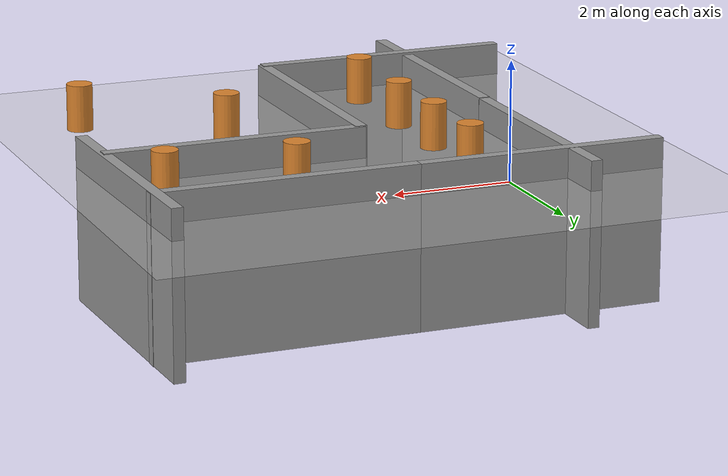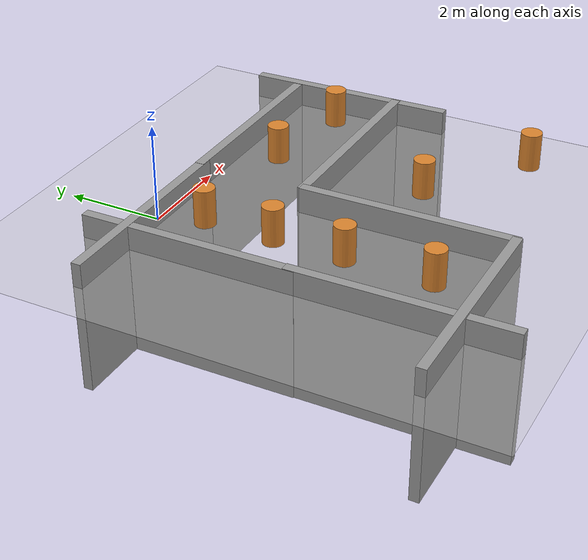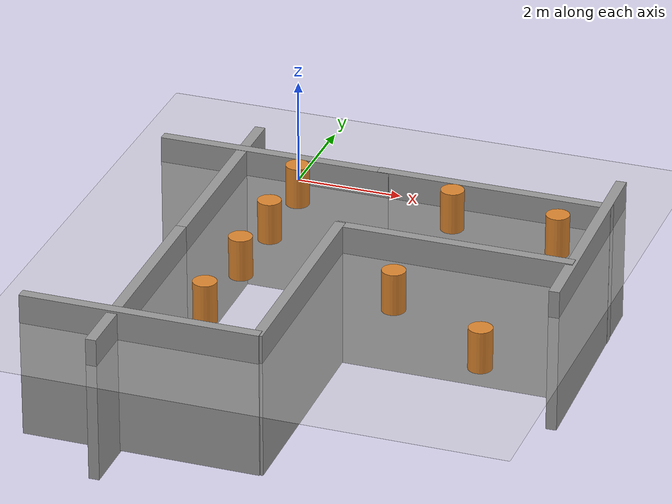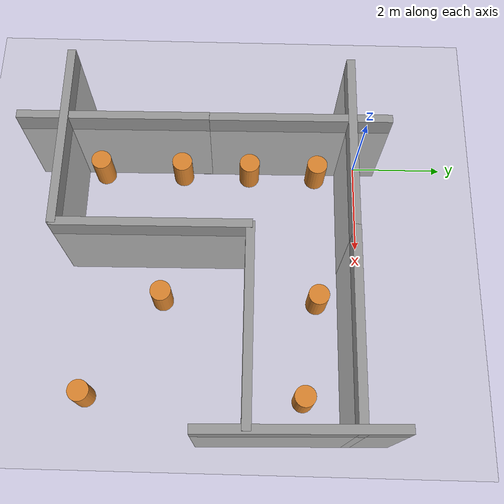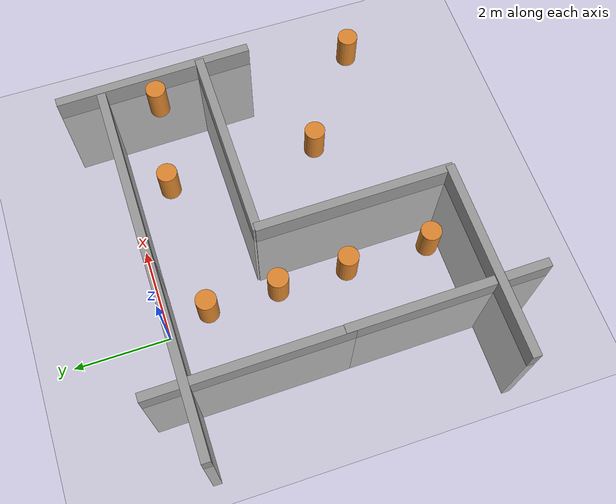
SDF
<sdf version='1.7'>
  <world name='default'>
    <plugin name='set_entity_state_plugin' filename='libset_entity_state.so'>
      <robot_name>my_robot</robot_name>
    </plugin>
    <plugin name='gazebo_ros_state' filename='libgazebo_ros_state.so'>
      <ros>
        <argument>model_states:=model_states_demo</argument>
      </ros>
      <update_rate>1.0</update_rate>
    </plugin>
    <light name='sun' type='directional'>
      <cast_shadows>1</cast_shadows>
      <pose>0 0 18 0 -0.35 0.2</pose>
      <diffuse>0.96 0.94 0.90 1</diffuse>
      <specular>0.16 0.16 0.16 1</specular>
      <attenuation>
        <range>1000</range>
        <constant>0.82</constant>
        <linear>0.006</linear>
        <quadratic>0.0008</quadratic>
      </attenuation>
      <direction>-0.35 0.18 -0.92</direction>
      <spot>
        <inner_angle>0</inner_angle>
        <outer_angle>0</outer_angle>
        <falloff>0</falloff>
      </spot>
    </light>
    <light name='fill_light' type='point'>
      <pose>0 0 9 0 0 0</pose>
      <diffuse>0.42 0.46 0.52 1</diffuse>
      <specular>0.03 0.03 0.03 1</specular>
      <attenuation>
        <range>30</range>
        <constant>0.7</constant>
        <linear>0.02</linear>
        <quadratic>0.001</quadratic>
      </attenuation>
    </light>
    <model name='ground_plane'>
      <static>1</static>
      <link name='link'>
        <collision name='collision'>
          <geometry>
            <plane>
              <normal>0 0 1</normal>
              <size>100 100</size>
            </plane>
          </geometry>
          <surface>
            <friction>
              <ode>
                <mu>100</mu>
                <mu2>50</mu2>
              </ode>
              <torsional>
                <ode/>
              </torsional>
            </friction>
            <contact>
              <ode/>
            </contact>
            <bounce/>
          </surface>
          <max_contacts>10</max_contacts>
        </collision>
        <visual name='visual'>
          <cast_shadows>0</cast_shadows>
          <geometry>
            <plane>
              <normal>0 0 1</normal>
              <size>100 100</size>
            </plane>
          </geometry>
          <material>
            <script>
              <uri>file://media/materials/scripts/gazebo.material</uri>
              <name>Gazebo/Grey</name>
            </script>
          </material>
        </visual>
        <self_collide>0</self_collide>
        <enable_wind>0</enable_wind>
        <kinematic>0</kinematic>
      </link>
    </model>
    <gravity>0 0 -9.8</gravity>
    <magnetic_field>6e-06 2.3e-05 -4.2e-05</magnetic_field>
    <atmosphere type='adiabatic'/>
    <physics type='ode'>
      <max_step_size>0.001</max_step_size>
      <real_time_factor>1</real_time_factor>
      <real_time_update_rate>1000</real_time_update_rate>
    </physics>
    <scene>
      <ambient>0.58 0.60 0.64 1</ambient>
      <background>0.90 0.93 0.98 1</background>
      <shadows>1</shadows>
    </scene>
    <wind/>
    <spherical_coordinates>
      <surface_model>EARTH_WGS84</surface_model>
      <latitude_deg>0</latitude_deg>
      <longitude_deg>0</longitude_deg>
      <elevation>0</elevation>
      <heading_deg>0</heading_deg>
    </spherical_coordinates>
    <model name='grey_wall'>
      <static>1</static>
      <link name='link'>
        <pose>0 0 1.4 0 -0 0</pose>
        <collision name='collision'>
          <geometry>
            <box>
              <size>4.5 0.2 2.8</size>
            </box>
          </geometry>
          <max_contacts>10</max_contacts>
          <surface>
            <contact>
              <ode/>
            </contact>
            <bounce/>
            <friction>
              <torsional>
                <ode/>
              </torsional>
              <ode/>
            </friction>
          </surface>
        </collision>
        <visual name='visual'>
          <cast_shadows>0</cast_shadows>
          <geometry>
            <box>
              <size>4.5 0.2 2.8</size>
            </box>
          </geometry>
          <material>
            <script>
              <uri>model://grey_wall/materials/scripts</uri>
              <uri>model://grey_wall/materials/textures</uri>
              <name>vrc/grey_wall</name>
            </script>
          </material>
        </visual>
        <self_collide>0</self_collide>
        <enable_wind>0</enable_wind>
        <kinematic>0</kinematic>
      </link>
      <pose>-0.52481 -6.74010 -2.25701 0 -0 0</pose>
    </model>
    <model name='grey_wall_0'>
      <static>1</static>
      <link name='link'>
        <pose>0 0 1.4 0 -0 0</pose>
        <collision name='collision'>
          <geometry>
            <box>
              <size>4.5 0.2 2.8</size>
            </box>
          </geometry>
          <max_contacts>10</max_contacts>
          <surface>
            <contact>
              <ode/>
            </contact>
            <bounce/>
            <friction>
              <torsional>
                <ode/>
              </torsional>
              <ode/>
            </friction>
          </surface>
        </collision>
        <visual name='visual'>
          <cast_shadows>0</cast_shadows>
          <geometry>
            <box>
              <size>4.5 0.2 2.8</size>
            </box>
          </geometry>
          <material>
            <script>
              <uri>model://grey_wall/materials/scripts</uri>
              <uri>model://grey_wall/materials/textures</uri>
              <name>vrc/grey_wall</name>
            </script>
          </material>
        </visual>
        <self_collide>0</self_collide>
        <enable_wind>0</enable_wind>
        <kinematic>0</kinematic>
      </link>
      <pose>-0.44853 -0.02143 -2.30785 0 -0 0</pose>
    </model>
    <model name='grey_wall_1'>
      <static>1</static>
      <link name='link'>
        <pose>0 0 1.4 0 -0 0</pose>
        <collision name='collision'>
          <geometry>
            <box>
              <size>4.5 0.2 2.8</size>
            </box>
          </geometry>
          <max_contacts>10</max_contacts>
          <surface>
            <contact>
              <ode/>
            </contact>
            <bounce/>
            <friction>
              <torsional>
                <ode/>
              </torsional>
              <ode/>
            </friction>
          </surface>
        </collision>
        <visual name='visual'>
          <cast_shadows>0</cast_shadows>
          <geometry>
            <box>
              <size>4.5 0.2 2.8</size>
            </box>
          </geometry>
          <material>
            <script>
              <uri>model://grey_wall/materials/scripts</uri>
              <uri>model://grey_wall/materials/textures</uri>
              <name>vrc/grey_wall</name>
            </script>
          </material>
        </visual>
        <self_collide>0</self_collide>
        <enable_wind>0</enable_wind>
        <kinematic>0</kinematic>
      </link>
      <pose>3.81596 -2.35351 -2.27806 0 -0 0</pose>
    </model>
    <model name='grey_wall_2'>
      <static>1</static>
      <link name='link'>
        <pose>0 0 1.4 0 -0 0</pose>
        <collision name='collision'>
          <geometry>
            <box>
              <size>4.5 0.2 2.8</size>
            </box>
          </geometry>
          <max_contacts>10</max_contacts>
          <surface>
            <contact>
              <ode/>
            </contact>
            <bounce/>
            <friction>
              <torsional>
                <ode/>
              </torsional>
              <ode/>
            </friction>
          </surface>
        </collision>
        <visual name='visual'>
          <cast_shadows>0</cast_shadows>
          <geometry>
            <box>
              <size>4.5 0.2 2.8</size>
            </box>
          </geometry>
          <material>
            <script>
              <uri>model://grey_wall/materials/scripts</uri>
              <uri>model://grey_wall/materials/textures</uri>
              <name>vrc/grey_wall</name>
            </script>
          </material>
        </visual>
        <self_collide>0</self_collide>
        <enable_wind>0</enable_wind>
        <kinematic>0</kinematic>
      </link>
      <pose>3.82432 -0.01579 -2.30342 0 -0 0</pose>
    </model>
    <model name='grey_wall_3'>
      <static>1</static>
      <link name='link'>
        <pose>0 0 1.4 0 -0 0</pose>
        <collision name='collision'>
          <geometry>
            <box>
              <size>4.5 0.2 2.8</size>
            </box>
          </geometry>
          <max_contacts>10</max_contacts>
          <surface>
            <contact>
              <ode/>
            </contact>
            <bounce/>
            <friction>
              <torsional>
                <ode/>
              </torsional>
              <ode/>
            </friction>
          </surface>
        </collision>
        <visual name='visual'>
          <cast_shadows>0</cast_shadows>
          <geometry>
            <box>
              <size>4.5 0.2 2.8</size>
            </box>
          </geometry>
          <material>
            <script>
              <uri>model://grey_wall/materials/scripts</uri>
              <uri>model://grey_wall/materials/textures</uri>
              <name>vrc/grey_wall</name>
            </script>
          </material>
        </visual>
        <self_collide>0</self_collide>
        <enable_wind>0</enable_wind>
        <kinematic>0</kinematic>
      </link>
      <pose>6.00048 -1.26116 -2.29386 0 -0 1.59488</pose>
    </model>
    <model name='grey_wall_4'>
      <static>1</static>
      <link name='link'>
        <pose>0 0 1.4 0 -0 0</pose>
        <collision name='collision'>
          <geometry>
            <box>
              <size>4.5 0.2 2.8</size>
            </box>
          </geometry>
          <max_contacts>10</max_contacts>
          <surface>
            <contact>
              <ode/>
            </contact>
            <bounce/>
            <friction>
              <torsional>
                <ode/>
              </torsional>
              <ode/>
            </friction>
          </surface>
        </collision>
        <visual name='visual'>
          <cast_shadows>0</cast_shadows>
          <geometry>
            <box>
              <size>4.5 0.2 2.8</size>
            </box>
          </geometry>
          <material>
            <script>
              <uri>model://grey_wall/materials/scripts</uri>
              <uri>model://grey_wall/materials/textures</uri>
              <name>vrc/grey_wall</name>
            </script>
          </material>
        </visual>
        <self_collide>0</self_collide>
        <enable_wind>0</enable_wind>
        <kinematic>0</kinematic>
      </link>
      <pose>1.65416 -4.55161 -2.26922 0 -0 1.58177</pose>
    </model>
    <model name='grey_wall_5'>
      <static>1</static>
      <link name='link'>
        <pose>0 0 1.4 0 -0 0</pose>
        <collision name='collision'>
          <geometry>
            <box>
              <size>4.5 0.2 2.8</size>
            </box>
          </geometry>
          <max_contacts>10</max_contacts>
          <surface>
            <contact>
              <ode/>
            </contact>
            <bounce/>
            <friction>
              <torsional>
                <ode/>
              </torsional>
              <ode/>
            </friction>
          </surface>
        </collision>
        <visual name='visual'>
          <cast_shadows>0</cast_shadows>
          <geometry>
            <box>
              <size>4.5 0.2 2.8</size>
            </box>
          </geometry>
          <material>
            <script>
              <uri>model://grey_wall/materials/scripts</uri>
              <uri>model://grey_wall/materials/textures</uri>
              <name>vrc/grey_wall</name>
            </script>
          </material>
        </visual>
        <self_collide>0</self_collide>
        <enable_wind>0</enable_wind>
        <kinematic>0</kinematic>
      </link>
      <pose>-1.07409 -1.34277 -2.3115 0 -0 1.58177</pose>
    </model>
    <model name='grey_wall_6'>
      <static>1</static>
      <link name='link'>
        <pose>0 0 1.4 0 -0 0</pose>
        <collision name='collision'>
          <geometry>
            <box>
              <size>4.5 0.2 2.8</size>
            </box>
          </geometry>
          <max_contacts>10</max_contacts>
          <surface>
            <contact>
              <ode/>
            </contact>
            <bounce/>
            <friction>
              <torsional>
                <ode/>
              </torsional>
              <ode/>
            </friction>
          </surface>
        </collision>
        <visual name='visual'>
          <cast_shadows>0</cast_shadows>
          <geometry>
            <box>
              <size>4.5 0.2 2.8</size>
            </box>
          </geometry>
          <material>
            <script>
              <uri>model://grey_wall/materials/scripts</uri>
              <uri>model://grey_wall/materials/textures</uri>
              <name>vrc/grey_wall</name>
            </script>
          </material>
        </visual>
        <self_collide>0</self_collide>
        <enable_wind>0</enable_wind>
        <kinematic>0</kinematic>
      </link>
      <pose>-1.02607 -5.61052 -2.29922 0 -0 1.58177</pose>
    </model>

    <gui fullscreen='0'>
      <camera name='user_camera'>
        <pose>6.24905 -2.38144 12.46 0 1.0338 3.06644</pose>
        <view_controller>orbit</view_controller>
        <projection_type>perspective</projection_type>
      </camera>
    </gui>

  <model name="dyn_obs_0">
    <static>true</static>
    <pose>0.30000 -0.90000 0.4 0 0 0</pose>
    <link name="link">
      <collision name="collision"><geometry><cylinder><radius>0.22</radius><length>0.8</length></cylinder></geometry></collision>
      <visual name="visual"><geometry><cylinder><radius>0.22</radius><length>0.8</length></cylinder></geometry>
        <cast_shadows>true</cast_shadows>
        <material><ambient>0.52 0.30 0.10 1</ambient><diffuse>0.86 0.52 0.18 1</diffuse><specular>0.08 0.06 0.04 1</specular><emissive>0 0 0 1</emissive></material></visual>
    </link>
  </model>
  <model name="dyn_obs_1">
    <static>true</static>
    <pose>0.30000 -2.40000 0.4 0 0 0</pose>
    <link name="link">
      <collision name="collision"><geometry><cylinder><radius>0.22</radius><length>0.8</length></cylinder></geometry></collision>
      <visual name="visual"><geometry><cylinder><radius>0.22</radius><length>0.8</length></cylinder></geometry>
        <cast_shadows>true</cast_shadows>
        <material><ambient>0.52 0.30 0.10 1</ambient><diffuse>0.86 0.52 0.18 1</diffuse><specular>0.08 0.06 0.04 1</specular><emissive>0 0 0 1</emissive></material></visual>
    </link>
  </model>
  <model name="dyn_obs_2">
    <static>true</static>
    <pose>0.30000 -3.90000 0.4 0 0 0</pose>
    <link name="link">
      <collision name="collision"><geometry><cylinder><radius>0.22</radius><length>0.8</length></cylinder></geometry></collision>
      <visual name="visual"><geometry><cylinder><radius>0.22</radius><length>0.8</length></cylinder></geometry>
        <cast_shadows>true</cast_shadows>
        <material><ambient>0.52 0.30 0.10 1</ambient><diffuse>0.86 0.52 0.18 1</diffuse><specular>0.08 0.06 0.04 1</specular><emissive>0 0 0 1</emissive></material></visual>
    </link>
  </model>
  <model name="dyn_obs_3">
    <static>true</static>
    <pose>0.30000 -5.70000 0.4 0 0 0</pose>
    <link name="link">
      <collision name="collision"><geometry><cylinder><radius>0.22</radius><length>0.8</length></cylinder></geometry></collision>
      <visual name="visual"><geometry><cylinder><radius>0.22</radius><length>0.8</length></cylinder></geometry>
        <cast_shadows>true</cast_shadows>
        <material><ambient>0.52 0.30 0.10 1</ambient><diffuse>0.86 0.52 0.18 1</diffuse><specular>0.08 0.06 0.04 1</specular><emissive>0 0 0 1</emissive></material></visual>
    </link>
  </model>
  <model name="dyn_obs_4">
    <static>true</static>
    <pose>3.30000 -0.90000 0.4 0 0 0</pose>
    <link name="link">
      <collision name="collision"><geometry><cylinder><radius>0.22</radius><length>0.8</length></cylinder></geometry></collision>
      <visual name="visual"><geometry><cylinder><radius>0.22</radius><length>0.8</length></cylinder></geometry>
        <cast_shadows>true</cast_shadows>
        <material><ambient>0.52 0.30 0.10 1</ambient><diffuse>0.86 0.52 0.18 1</diffuse><specular>0.08 0.06 0.04 1</specular><emissive>0 0 0 1</emissive></material></visual>
    </link>
  </model>
  <model name="dyn_obs_5">
    <static>true</static>
    <pose>5.40000 -1.20000 0.4 0 0 0</pose>
    <link name="link">
      <collision name="collision"><geometry><cylinder><radius>0.22</radius><length>0.8</length></cylinder></geometry></collision>
      <visual name="visual"><geometry><cylinder><radius>0.22</radius><length>0.8</length></cylinder></geometry>
        <cast_shadows>true</cast_shadows>
        <material><ambient>0.52 0.30 0.10 1</ambient><diffuse>0.86 0.52 0.18 1</diffuse><specular>0.08 0.06 0.04 1</specular><emissive>0 0 0 1</emissive></material></visual>
    </link>
  </model>
  <model name="dyn_obs_6">
    <static>true</static>
    <pose>3.30000 -4.20000 0.4 0 0 0</pose>
    <link name="link">
      <collision name="collision"><geometry><cylinder><radius>0.22</radius><length>0.8</length></cylinder></geometry></collision>
      <visual name="visual"><geometry><cylinder><radius>0.22</radius><length>0.8</length></cylinder></geometry>
        <cast_shadows>true</cast_shadows>
        <material><ambient>0.52 0.30 0.10 1</ambient><diffuse>0.86 0.52 0.18 1</diffuse><specular>0.08 0.06 0.04 1</specular><emissive>0 0 0 1</emissive></material></visual>
    </link>
  </model>
  <model name="dyn_obs_7">
    <static>true</static>
    <pose>5.40000 -5.70000 0.4 0 0 0</pose>
    <link name="link">
      <collision name="collision"><geometry><cylinder><radius>0.22</radius><length>0.8</length></cylinder></geometry></collision>
      <visual name="visual"><geometry><cylinder><radius>0.22</radius><length>0.8</length></cylinder></geometry>
        <cast_shadows>true</cast_shadows>
        <material><ambient>0.52 0.30 0.10 1</ambient><diffuse>0.86 0.52 0.18 1</diffuse><specular>0.08 0.06 0.04 1</specular><emissive>0 0 0 1</emissive></material></visual>
    </link>
  </model>
</world>
</sdf>
